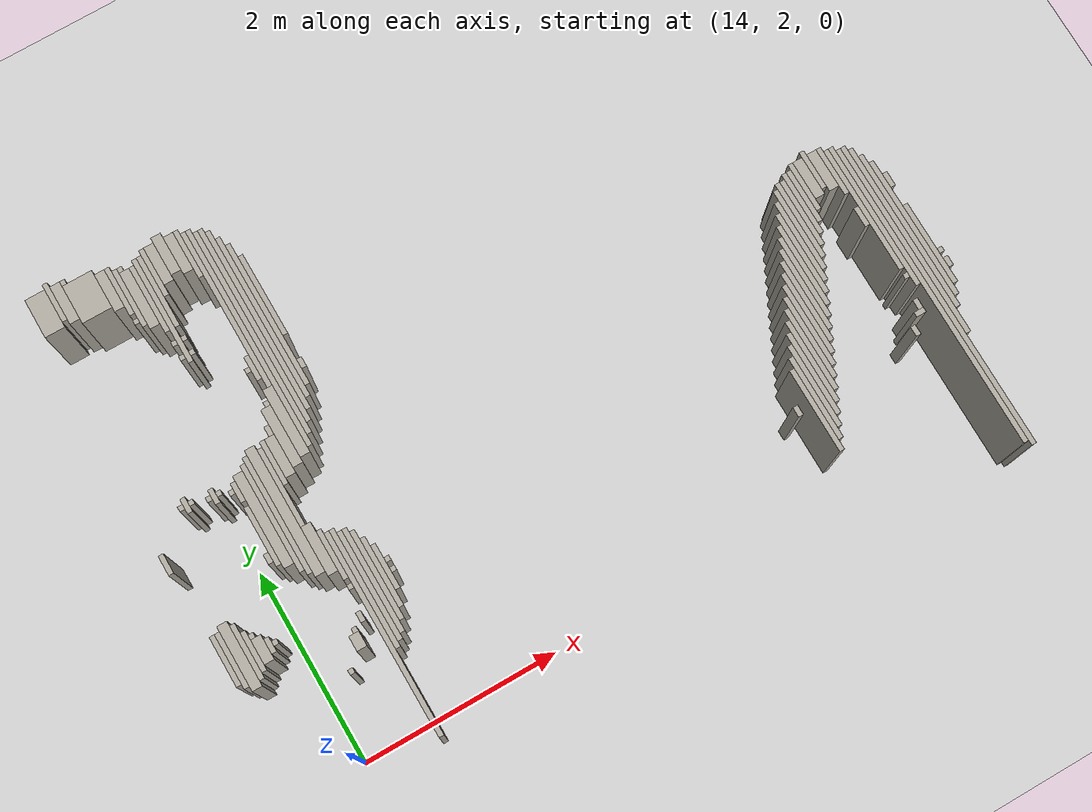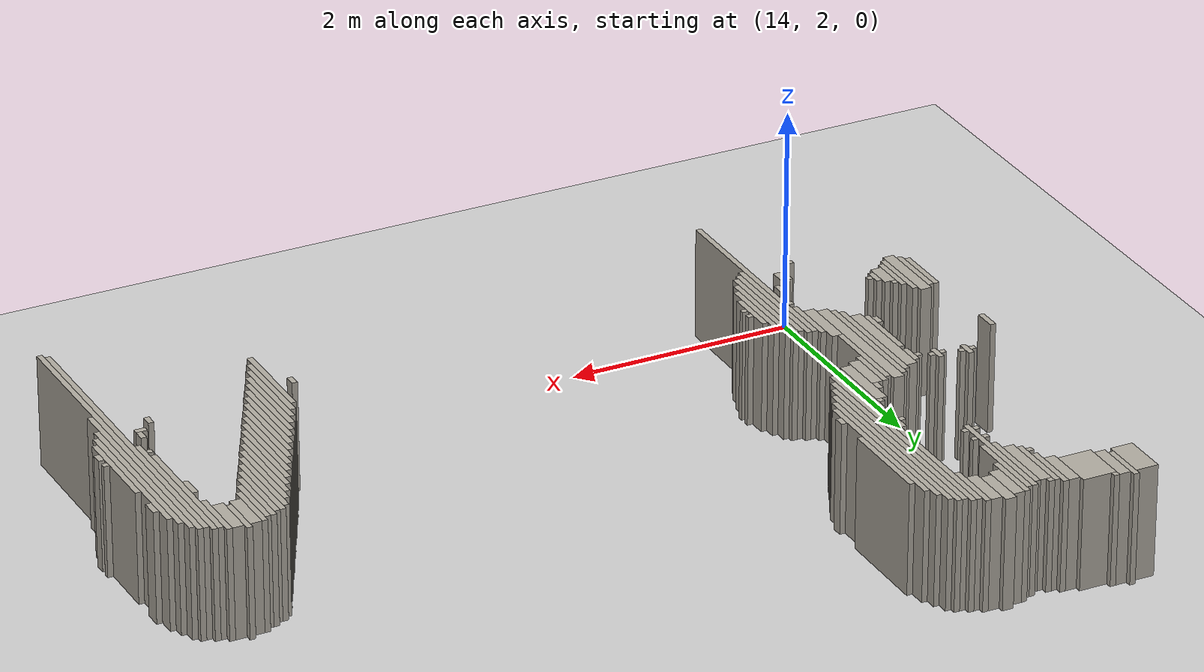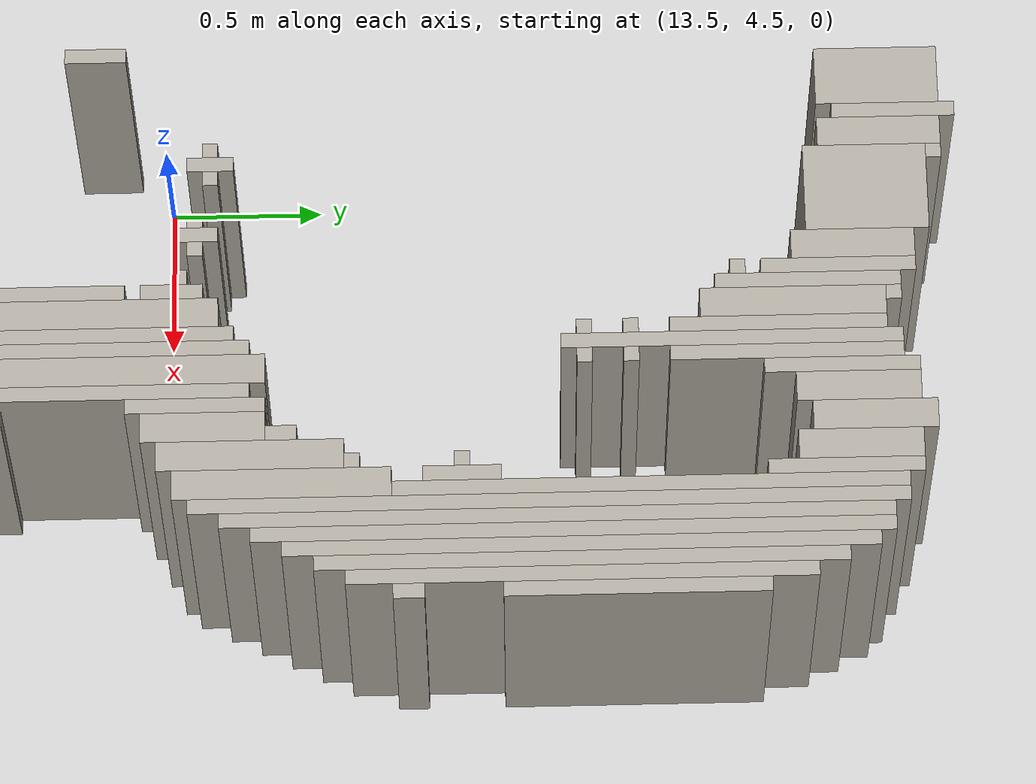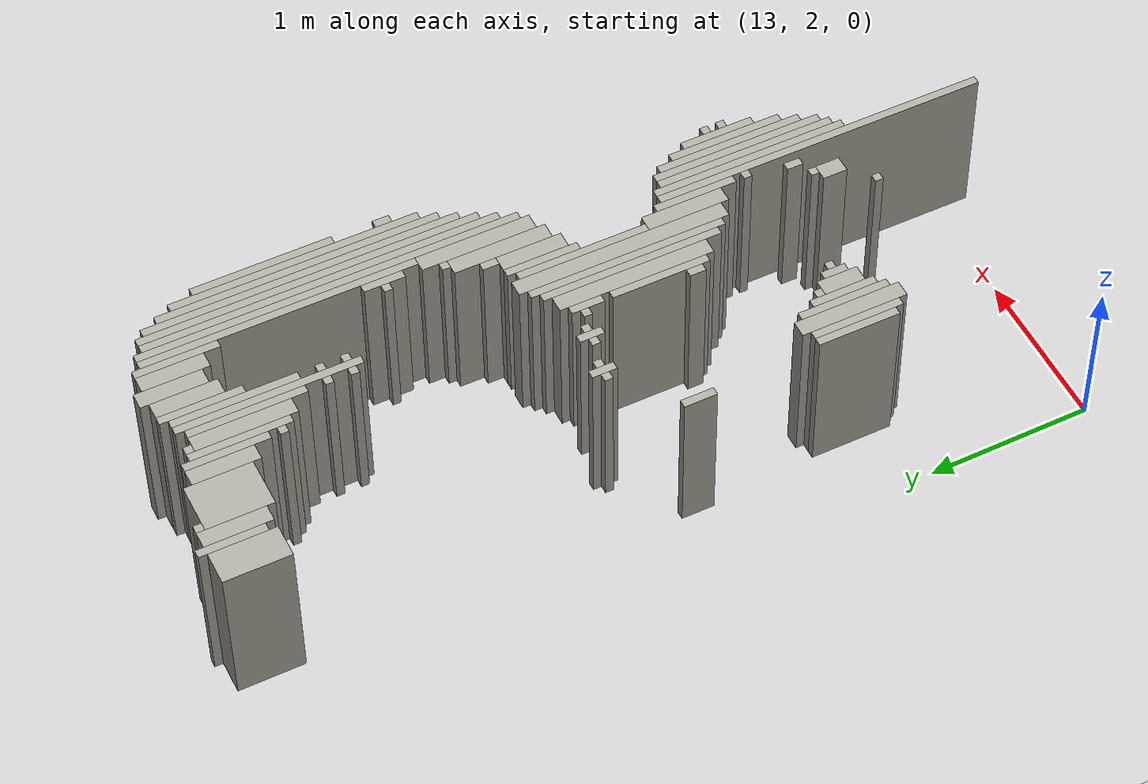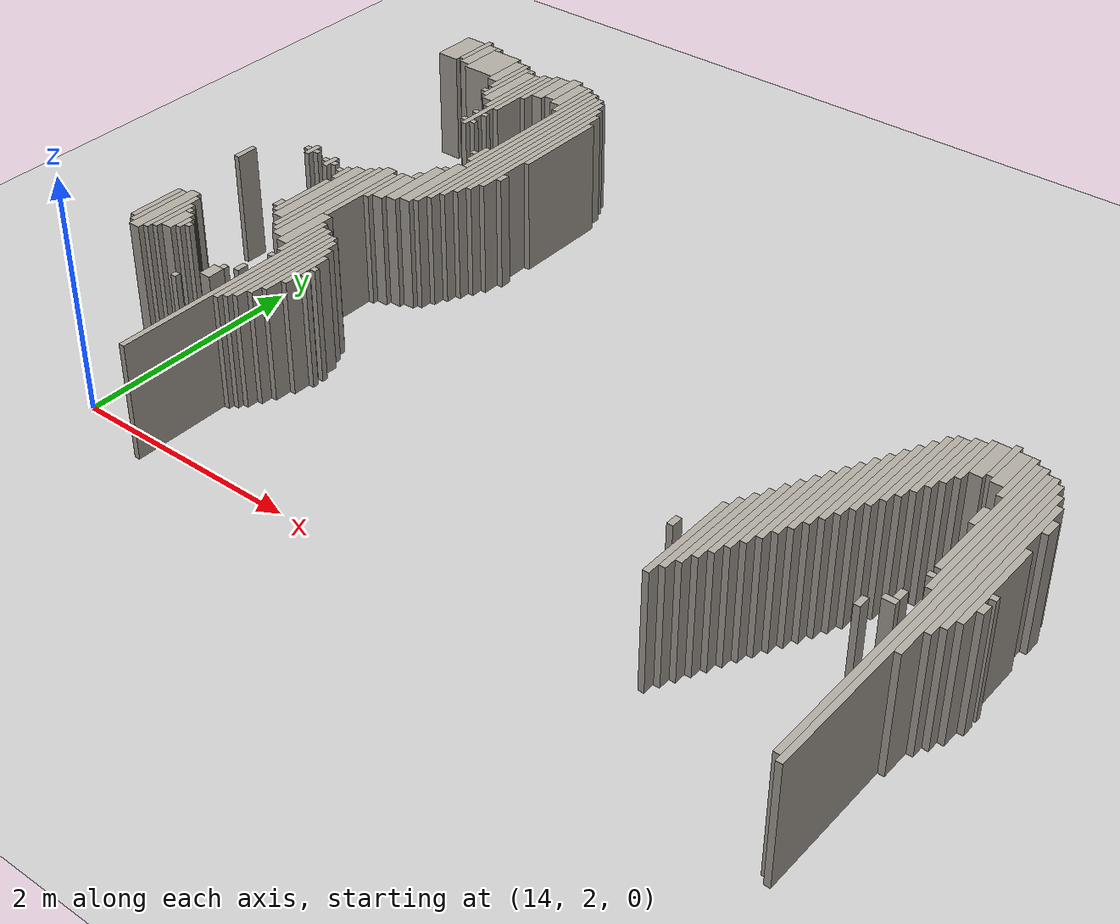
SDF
<sdf version="1.6">
 <world name="fr079_office">
  <include><uri>model://sun</uri></include>
  <include><uri>model://ground_plane</uri></include>
  <model name="fr079_office_walls">
   <static>true</static>
   <link name="w2005">
    <pose>20.527 2.994 0.500 0 0 0</pose>
    <collision name="c"><geometry><box><size>0.050 3.200 1.000</size></box></geometry></collision>
    <visual name="v">
     <geometry><box><size>0.050 3.200 1.000</size></box></geometry>
     <material><ambient>0.68 0.66 0.62 1</ambient><diffuse>0.68 0.66 0.62 1</diffuse></material>
    </visual>
   </link>
   <link name="w2022">
    <pose>20.477 3.019 0.500 0 0 0</pose>
    <collision name="c"><geometry><box><size>0.050 3.150 1.000</size></box></geometry></collision>
    <visual name="v">
     <geometry><box><size>0.050 3.150 1.000</size></box></geometry>
     <material><ambient>0.68 0.66 0.62 1</ambient><diffuse>0.68 0.66 0.62 1</diffuse></material>
    </visual>
   </link>
   <link name="w2121">
    <pose>14.727 2.819 0.500 0 0 0</pose>
    <collision name="c"><geometry><box><size>0.050 2.050 1.000</size></box></geometry></collision>
    <visual name="v">
     <geometry><box><size>0.050 2.050 1.000</size></box></geometry>
     <material><ambient>0.68 0.66 0.62 1</ambient><diffuse>0.68 0.66 0.62 1</diffuse></material>
    </visual>
   </link>
   <link name="w2218">
    <pose>19.027 2.619 0.500 0 0 0</pose>
    <collision name="c"><geometry><box><size>0.050 0.850 1.000</size></box></geometry></collision>
    <visual name="v">
     <geometry><box><size>0.050 0.850 1.000</size></box></geometry>
     <material><ambient>0.68 0.66 0.62 1</ambient><diffuse>0.68 0.66 0.62 1</diffuse></material>
    </visual>
   </link>
   <link name="w2239">
    <pose>19.077 2.719 0.500 0 0 0</pose>
    <collision name="c"><geometry><box><size>0.050 0.850 1.000</size></box></geometry></collision>
    <visual name="v">
     <geometry><box><size>0.050 0.850 1.000</size></box></geometry>
     <material><ambient>0.68 0.66 0.62 1</ambient><diffuse>0.68 0.66 0.62 1</diffuse></material>
    </visual>
   </link>
   <link name="w2260">
    <pose>19.127 2.819 0.500 0 0 0</pose>
    <collision name="c"><geometry><box><size>0.050 0.850 1.000</size></box></geometry></collision>
    <visual name="v">
     <geometry><box><size>0.050 0.850 1.000</size></box></geometry>
     <material><ambient>0.68 0.66 0.62 1</ambient><diffuse>0.68 0.66 0.62 1</diffuse></material>
    </visual>
   </link>
   <link name="w2283">
    <pose>19.177 2.919 0.500 0 0 0</pose>
    <collision name="c"><geometry><box><size>0.050 0.850 1.000</size></box></geometry></collision>
    <visual name="v">
     <geometry><box><size>0.050 0.850 1.000</size></box></geometry>
     <material><ambient>0.68 0.66 0.62 1</ambient><diffuse>0.68 0.66 0.62 1</diffuse></material>
    </visual>
   </link>
   <link name="w2305">
    <pose>20.577 3.544 0.500 0 0 0</pose>
    <collision name="c"><geometry><box><size>0.050 2.000 1.000</size></box></geometry></collision>
    <visual name="v">
     <geometry><box><size>0.050 2.000 1.000</size></box></geometry>
     <material><ambient>0.68 0.66 0.62 1</ambient><diffuse>0.68 0.66 0.62 1</diffuse></material>
    </visual>
   </link>
   <link name="w2321">
    <pose>19.227 3.019 0.500 0 0 0</pose>
    <collision name="c"><geometry><box><size>0.050 0.850 1.000</size></box></geometry></collision>
    <visual name="v">
     <geometry><box><size>0.050 0.850 1.000</size></box></geometry>
     <material><ambient>0.68 0.66 0.62 1</ambient><diffuse>0.68 0.66 0.62 1</diffuse></material>
    </visual>
   </link>
   <link name="w2329">
    <pose>14.327 2.669 0.500 0 0 0</pose>
    <collision name="c"><geometry><box><size>0.050 0.050 1.000</size></box></geometry></collision>
    <visual name="v">
     <geometry><box><size>0.050 0.050 1.000</size></box></geometry>
     <material><ambient>0.68 0.66 0.62 1</ambient><diffuse>0.68 0.66 0.62 1</diffuse></material>
    </visual>
   </link>
   <link name="w2330">
    <pose>14.777 3.244 0.500 0 0 0</pose>
    <collision name="c"><geometry><box><size>0.050 1.200 1.000</size></box></geometry></collision>
    <visual name="v">
     <geometry><box><size>0.050 1.200 1.000</size></box></geometry>
     <material><ambient>0.68 0.66 0.62 1</ambient><diffuse>0.68 0.66 0.62 1</diffuse></material>
    </visual>
   </link>
   <link name="w2331">
    <pose>18.877 2.694 0.500 0 0 0</pose>
    <collision name="c"><geometry><box><size>0.050 0.100 1.000</size></box></geometry></collision>
    <visual name="v">
     <geometry><box><size>0.050 0.100 1.000</size></box></geometry>
     <material><ambient>0.68 0.66 0.62 1</ambient><diffuse>0.68 0.66 0.62 1</diffuse></material>
    </visual>
   </link>
   <link name="w2338">
    <pose>14.827 3.244 0.500 0 0 0</pose>
    <collision name="c"><geometry><box><size>0.050 1.100 1.000</size></box></geometry></collision>
    <visual name="v">
     <geometry><box><size>0.050 1.100 1.000</size></box></geometry>
     <material><ambient>0.68 0.66 0.62 1</ambient><diffuse>0.68 0.66 0.62 1</diffuse></material>
    </visual>
   </link>
   <link name="w2339">
    <pose>19.277 3.119 0.500 0 0 0</pose>
    <collision name="c"><geometry><box><size>0.050 0.850 1.000</size></box></geometry></collision>
    <visual name="v">
     <geometry><box><size>0.050 0.850 1.000</size></box></geometry>
     <material><ambient>0.68 0.66 0.62 1</ambient><diffuse>0.68 0.66 0.62 1</diffuse></material>
    </visual>
   </link>
   <link name="w2347">
    <pose>14.877 3.269 0.500 0 0 0</pose>
    <collision name="c"><geometry><box><size>0.050 1.050 1.000</size></box></geometry></collision>
    <visual name="v">
     <geometry><box><size>0.050 1.050 1.000</size></box></geometry>
     <material><ambient>0.68 0.66 0.62 1</ambient><diffuse>0.68 0.66 0.62 1</diffuse></material>
    </visual>
   </link>
   <link name="w2348">
    <pose>20.177 2.794 0.500 0 0 0</pose>
    <collision name="c"><geometry><box><size>0.050 0.100 1.000</size></box></geometry></collision>
    <visual name="v">
     <geometry><box><size>0.050 0.100 1.000</size></box></geometry>
     <material><ambient>0.68 0.66 0.62 1</ambient><diffuse>0.68 0.66 0.62 1</diffuse></material>
    </visual>
   </link>
   <link name="w2354">
    <pose>14.502 2.869 0.500 0 0 0</pose>
    <collision name="c"><geometry><box><size>0.100 0.150 1.000</size></box></geometry></collision>
    <visual name="v">
     <geometry><box><size>0.100 0.150 1.000</size></box></geometry>
     <material><ambient>0.68 0.66 0.62 1</ambient><diffuse>0.68 0.66 0.62 1</diffuse></material>
    </visual>
   </link>
   <link name="w2355">
    <pose>19.327 3.219 0.500 0 0 0</pose>
    <collision name="c"><geometry><box><size>0.050 0.850 1.000</size></box></geometry></collision>
    <visual name="v">
     <geometry><box><size>0.050 0.850 1.000</size></box></geometry>
     <material><ambient>0.68 0.66 0.62 1</ambient><diffuse>0.68 0.66 0.62 1</diffuse></material>
    </visual>
   </link>
   <link name="w2356">
    <pose>20.627 3.619 0.500 0 0 0</pose>
    <collision name="c"><geometry><box><size>0.050 1.650 1.000</size></box></geometry></collision>
    <visual name="v">
     <geometry><box><size>0.050 1.650 1.000</size></box></geometry>
     <material><ambient>0.68 0.66 0.62 1</ambient><diffuse>0.68 0.66 0.62 1</diffuse></material>
    </visual>
   </link>
   <link name="w2367">
    <pose>14.927 3.294 0.500 0 0 0</pose>
    <collision name="c"><geometry><box><size>0.050 0.900 1.000</size></box></geometry></collision>
    <visual name="v">
     <geometry><box><size>0.050 0.900 1.000</size></box></geometry>
     <material><ambient>0.68 0.66 0.62 1</ambient><diffuse>0.68 0.66 0.62 1</diffuse></material>
    </visual>
   </link>
   <link name="w2380">
    <pose>19.377 3.319 0.500 0 0 0</pose>
    <collision name="c"><geometry><box><size>0.050 0.850 1.000</size></box></geometry></collision>
    <visual name="v">
     <geometry><box><size>0.050 0.850 1.000</size></box></geometry>
     <material><ambient>0.68 0.66 0.62 1</ambient><diffuse>0.68 0.66 0.62 1</diffuse></material>
    </visual>
   </link>
   <link name="w2381">
    <pose>20.302 2.919 0.500 0 0 0</pose>
    <collision name="c"><geometry><box><size>0.100 0.050 1.000</size></box></geometry></collision>
    <visual name="v">
     <geometry><box><size>0.100 0.050 1.000</size></box></geometry>
     <material><ambient>0.68 0.66 0.62 1</ambient><diffuse>0.68 0.66 0.62 1</diffuse></material>
    </visual>
   </link>
   <link name="w2382">
    <pose>20.677 3.619 0.500 0 0 0</pose>
    <collision name="c"><geometry><box><size>0.050 1.450 1.000</size></box></geometry></collision>
    <visual name="v">
     <geometry><box><size>0.050 1.450 1.000</size></box></geometry>
     <material><ambient>0.68 0.66 0.62 1</ambient><diffuse>0.68 0.66 0.62 1</diffuse></material>
    </visual>
   </link>
   <link name="w2391">
    <pose>13.552 3.269 0.500 0 0 0</pose>
    <collision name="c"><geometry><box><size>0.100 0.650 1.000</size></box></geometry></collision>
    <visual name="v">
     <geometry><box><size>0.100 0.650 1.000</size></box></geometry>
     <material><ambient>0.68 0.66 0.62 1</ambient><diffuse>0.68 0.66 0.62 1</diffuse></material>
    </visual>
   </link>
   <link name="w2392">
    <pose>14.527 2.969 0.500 0 0 0</pose>
    <collision name="c"><geometry><box><size>0.050 0.050 1.000</size></box></geometry></collision>
    <visual name="v">
     <geometry><box><size>0.050 0.050 1.000</size></box></geometry>
     <material><ambient>0.68 0.66 0.62 1</ambient><diffuse>0.68 0.66 0.62 1</diffuse></material>
    </visual>
   </link>
   <link name="w2393">
    <pose>14.977 3.294 0.500 0 0 0</pose>
    <collision name="c"><geometry><box><size>0.050 0.700 1.000</size></box></geometry></collision>
    <visual name="v">
     <geometry><box><size>0.050 0.700 1.000</size></box></geometry>
     <material><ambient>0.68 0.66 0.62 1</ambient><diffuse>0.68 0.66 0.62 1</diffuse></material>
    </visual>
   </link>
   <link name="w2394">
    <pose>20.327 2.994 0.500 0 0 0</pose>
    <collision name="c"><geometry><box><size>0.050 0.100 1.000</size></box></geometry></collision>
    <visual name="v">
     <geometry><box><size>0.050 0.100 1.000</size></box></geometry>
     <material><ambient>0.68 0.66 0.62 1</ambient><diffuse>0.68 0.66 0.62 1</diffuse></material>
    </visual>
   </link>
   <link name="w2401">
    <pose>13.477 3.269 0.500 0 0 0</pose>
    <collision name="c"><geometry><box><size>0.050 0.550 1.000</size></box></geometry></collision>
    <visual name="v">
     <geometry><box><size>0.050 0.550 1.000</size></box></geometry>
     <material><ambient>0.68 0.66 0.62 1</ambient><diffuse>0.68 0.66 0.62 1</diffuse></material>
    </visual>
   </link>
   <link name="w2402">
    <pose>13.627 3.269 0.500 0 0 0</pose>
    <collision name="c"><geometry><box><size>0.050 0.550 1.000</size></box></geometry></collision>
    <visual name="v">
     <geometry><box><size>0.050 0.550 1.000</size></box></geometry>
     <material><ambient>0.68 0.66 0.62 1</ambient><diffuse>0.68 0.66 0.62 1</diffuse></material>
    </visual>
   </link>
   <link name="w2403">
    <pose>14.627 3.044 0.500 0 0 0</pose>
    <collision name="c"><geometry><box><size>0.050 0.100 1.000</size></box></geometry></collision>
    <visual name="v">
     <geometry><box><size>0.050 0.100 1.000</size></box></geometry>
     <material><ambient>0.68 0.66 0.62 1</ambient><diffuse>0.68 0.66 0.62 1</diffuse></material>
    </visual>
   </link>
   <link name="w2404">
    <pose>19.427 3.419 0.500 0 0 0</pose>
    <collision name="c"><geometry><box><size>0.050 0.850 1.000</size></box></geometry></collision>
    <visual name="v">
     <geometry><box><size>0.050 0.850 1.000</size></box></geometry>
     <material><ambient>0.68 0.66 0.62 1</ambient><diffuse>0.68 0.66 0.62 1</diffuse></material>
    </visual>
   </link>
   <link name="w2405">
    <pose>20.727 3.419 0.500 0 0 0</pose>
    <collision name="c"><geometry><box><size>0.050 0.850 1.000</size></box></geometry></collision>
    <visual name="v">
     <geometry><box><size>0.050 0.850 1.000</size></box></geometry>
     <material><ambient>0.68 0.66 0.62 1</ambient><diffuse>0.68 0.66 0.62 1</diffuse></material>
    </visual>
   </link>
   <link name="w2417">
    <pose>13.427 3.294 0.500 0 0 0</pose>
    <collision name="c"><geometry><box><size>0.050 0.500 1.000</size></box></geometry></collision>
    <visual name="v">
     <geometry><box><size>0.050 0.500 1.000</size></box></geometry>
     <material><ambient>0.68 0.66 0.62 1</ambient><diffuse>0.68 0.66 0.62 1</diffuse></material>
    </visual>
   </link>
   <link name="w2418">
    <pose>13.677 3.244 0.500 0 0 0</pose>
    <collision name="c"><geometry><box><size>0.050 0.400 1.000</size></box></geometry></collision>
    <visual name="v">
     <geometry><box><size>0.050 0.400 1.000</size></box></geometry>
     <material><ambient>0.68 0.66 0.62 1</ambient><diffuse>0.68 0.66 0.62 1</diffuse></material>
    </visual>
   </link>
   <link name="w2437">
    <pose>13.752 3.219 0.500 0 0 0</pose>
    <collision name="c"><geometry><box><size>0.100 0.250 1.000</size></box></geometry></collision>
    <visual name="v">
     <geometry><box><size>0.100 0.250 1.000</size></box></geometry>
     <material><ambient>0.68 0.66 0.62 1</ambient><diffuse>0.68 0.66 0.62 1</diffuse></material>
    </visual>
   </link>
   <link name="w2438">
    <pose>15.027 3.319 0.500 0 0 0</pose>
    <collision name="c"><geometry><box><size>0.050 0.450 1.000</size></box></geometry></collision>
    <visual name="v">
     <geometry><box><size>0.050 0.450 1.000</size></box></geometry>
     <material><ambient>0.68 0.66 0.62 1</ambient><diffuse>0.68 0.66 0.62 1</diffuse></material>
    </visual>
   </link>
   <link name="w2439">
    <pose>19.477 3.519 0.500 0 0 0</pose>
    <collision name="c"><geometry><box><size>0.050 0.850 1.000</size></box></geometry></collision>
    <visual name="v">
     <geometry><box><size>0.050 0.850 1.000</size></box></geometry>
     <material><ambient>0.68 0.66 0.62 1</ambient><diffuse>0.68 0.66 0.62 1</diffuse></material>
    </visual>
   </link>
   <link name="w2449">
    <pose>13.827 3.219 0.500 0 0 0</pose>
    <collision name="c"><geometry><box><size>0.050 0.150 1.000</size></box></geometry></collision>
    <visual name="v">
     <geometry><box><size>0.050 0.150 1.000</size></box></geometry>
     <material><ambient>0.68 0.66 0.62 1</ambient><diffuse>0.68 0.66 0.62 1</diffuse></material>
    </visual>
   </link>
   <link name="w2450">
    <pose>20.427 3.894 0.500 0 0 0</pose>
    <collision name="c"><geometry><box><size>0.050 1.500 1.000</size></box></geometry></collision>
    <visual name="v">
     <geometry><box><size>0.050 1.500 1.000</size></box></geometry>
     <material><ambient>0.68 0.66 0.62 1</ambient><diffuse>0.68 0.66 0.62 1</diffuse></material>
    </visual>
   </link>
   <link name="w2451">
    <pose>20.777 3.194 0.500 0 0 0</pose>
    <collision name="c"><geometry><box><size>0.050 0.100 1.000</size></box></geometry></collision>
    <visual name="v">
     <geometry><box><size>0.050 0.100 1.000</size></box></geometry>
     <material><ambient>0.68 0.66 0.62 1</ambient><diffuse>0.68 0.66 0.62 1</diffuse></material>
    </visual>
   </link>
   <link name="w2463">
    <pose>13.877 3.219 0.500 0 0 0</pose>
    <collision name="c"><geometry><box><size>0.050 0.050 1.000</size></box></geometry></collision>
    <visual name="v">
     <geometry><box><size>0.050 0.050 1.000</size></box></geometry>
     <material><ambient>0.68 0.66 0.62 1</ambient><diffuse>0.68 0.66 0.62 1</diffuse></material>
    </visual>
   </link>
   <link name="w2464">
    <pose>19.527 3.619 0.500 0 0 0</pose>
    <collision name="c"><geometry><box><size>0.050 0.850 1.000</size></box></geometry></collision>
    <visual name="v">
     <geometry><box><size>0.050 0.850 1.000</size></box></geometry>
     <material><ambient>0.68 0.66 0.62 1</ambient><diffuse>0.68 0.66 0.62 1</diffuse></material>
    </visual>
   </link>
   <link name="w2477">
    <pose>15.077 3.269 0.500 0 0 0</pose>
    <collision name="c"><geometry><box><size>0.050 0.050 1.000</size></box></geometry></collision>
    <visual name="v">
     <geometry><box><size>0.050 0.050 1.000</size></box></geometry>
     <material><ambient>0.68 0.66 0.62 1</ambient><diffuse>0.68 0.66 0.62 1</diffuse></material>
    </visual>
   </link>
   <link name="w2478">
    <pose>20.377 3.269 0.500 0 0 0</pose>
    <collision name="c"><geometry><box><size>0.050 0.050 1.000</size></box></geometry></collision>
    <visual name="v">
     <geometry><box><size>0.050 0.050 1.000</size></box></geometry>
     <material><ambient>0.68 0.66 0.62 1</ambient><diffuse>0.68 0.66 0.62 1</diffuse></material>
    </visual>
   </link>
   <link name="w2489">
    <pose>14.677 3.319 0.500 0 0 0</pose>
    <collision name="c"><geometry><box><size>0.050 0.050 1.000</size></box></geometry></collision>
    <visual name="v">
     <geometry><box><size>0.050 0.050 1.000</size></box></geometry>
     <material><ambient>0.68 0.66 0.62 1</ambient><diffuse>0.68 0.66 0.62 1</diffuse></material>
    </visual>
   </link>
   <link name="w2490">
    <pose>19.577 3.719 0.500 0 0 0</pose>
    <collision name="c"><geometry><box><size>0.050 0.850 1.000</size></box></geometry></collision>
    <visual name="v">
     <geometry><box><size>0.050 0.850 1.000</size></box></geometry>
     <material><ambient>0.68 0.66 0.62 1</ambient><diffuse>0.68 0.66 0.62 1</diffuse></material>
    </visual>
   </link>
   <link name="w2491">
    <pose>20.777 3.319 0.500 0 0 0</pose>
    <collision name="c"><geometry><box><size>0.050 0.050 1.000</size></box></geometry></collision>
    <visual name="v">
     <geometry><box><size>0.050 0.050 1.000</size></box></geometry>
     <material><ambient>0.68 0.66 0.62 1</ambient><diffuse>0.68 0.66 0.62 1</diffuse></material>
    </visual>
   </link>
   <link name="w2502">
    <pose>13.727 3.369 0.500 0 0 0</pose>
    <collision name="c"><geometry><box><size>0.050 0.050 1.000</size></box></geometry></collision>
    <visual name="v">
     <geometry><box><size>0.050 0.050 1.000</size></box></geometry>
     <material><ambient>0.68 0.66 0.62 1</ambient><diffuse>0.68 0.66 0.62 1</diffuse></material>
    </visual>
   </link>
   <link name="w2503">
    <pose>15.077 3.369 0.500 0 0 0</pose>
    <collision name="c"><geometry><box><size>0.050 0.050 1.000</size></box></geometry></collision>
    <visual name="v">
     <geometry><box><size>0.050 0.050 1.000</size></box></geometry>
     <material><ambient>0.68 0.66 0.62 1</ambient><diffuse>0.68 0.66 0.62 1</diffuse></material>
    </visual>
   </link>
   <link name="w2504">
    <pose>20.377 3.994 0.500 0 0 0</pose>
    <collision name="c"><geometry><box><size>0.050 1.300 1.000</size></box></geometry></collision>
    <visual name="v">
     <geometry><box><size>0.050 1.300 1.000</size></box></geometry>
     <material><ambient>0.68 0.66 0.62 1</ambient><diffuse>0.68 0.66 0.62 1</diffuse></material>
    </visual>
   </link>
   <link name="w2515">
    <pose>14.677 3.644 0.500 0 0 0</pose>
    <collision name="c"><geometry><box><size>0.050 0.500 1.000</size></box></geometry></collision>
    <visual name="v">
     <geometry><box><size>0.050 0.500 1.000</size></box></geometry>
     <material><ambient>0.68 0.66 0.62 1</ambient><diffuse>0.68 0.66 0.62 1</diffuse></material>
    </visual>
   </link>
   <link name="w2516">
    <pose>19.627 3.819 0.500 0 0 0</pose>
    <collision name="c"><geometry><box><size>0.050 0.850 1.000</size></box></geometry></collision>
    <visual name="v">
     <geometry><box><size>0.050 0.850 1.000</size></box></geometry>
     <material><ambient>0.68 0.66 0.62 1</ambient><diffuse>0.68 0.66 0.62 1</diffuse></material>
    </visual>
   </link>
   <link name="w2533">
    <pose>14.602 3.744 0.500 0 0 0</pose>
    <collision name="c"><geometry><box><size>0.100 0.500 1.000</size></box></geometry></collision>
    <visual name="v">
     <geometry><box><size>0.100 0.500 1.000</size></box></geometry>
     <material><ambient>0.68 0.66 0.62 1</ambient><diffuse>0.68 0.66 0.62 1</diffuse></material>
    </visual>
   </link>
   <link name="w2534">
    <pose>19.677 3.919 0.500 0 0 0</pose>
    <collision name="c"><geometry><box><size>0.050 0.850 1.000</size></box></geometry></collision>
    <visual name="v">
     <geometry><box><size>0.050 0.850 1.000</size></box></geometry>
     <material><ambient>0.68 0.66 0.62 1</ambient><diffuse>0.68 0.66 0.62 1</diffuse></material>
    </visual>
   </link>
   <link name="w2541">
    <pose>14.502 4.194 0.500 0 0 0</pose>
    <collision name="c"><geometry><box><size>0.100 1.300 1.000</size></box></geometry></collision>
    <visual name="v">
     <geometry><box><size>0.100 1.300 1.000</size></box></geometry>
     <material><ambient>0.68 0.66 0.62 1</ambient><diffuse>0.68 0.66 0.62 1</diffuse></material>
    </visual>
   </link>
   <link name="w2547">
    <pose>14.427 4.194 0.500 0 0 0</pose>
    <collision name="c"><geometry><box><size>0.050 1.200 1.000</size></box></geometry></collision>
    <visual name="v">
     <geometry><box><size>0.050 1.200 1.000</size></box></geometry>
     <material><ambient>0.68 0.66 0.62 1</ambient><diffuse>0.68 0.66 0.62 1</diffuse></material>
    </visual>
   </link>
   <link name="w2548">
    <pose>19.727 4.019 0.500 0 0 0</pose>
    <collision name="c"><geometry><box><size>0.050 0.850 1.000</size></box></geometry></collision>
    <visual name="v">
     <geometry><box><size>0.050 0.850 1.000</size></box></geometry>
     <material><ambient>0.68 0.66 0.62 1</ambient><diffuse>0.68 0.66 0.62 1</diffuse></material>
    </visual>
   </link>
   <link name="w2556">
    <pose>14.377 4.194 0.500 0 0 0</pose>
    <collision name="c"><geometry><box><size>0.050 1.100 1.000</size></box></geometry></collision>
    <visual name="v">
     <geometry><box><size>0.050 1.100 1.000</size></box></geometry>
     <material><ambient>0.68 0.66 0.62 1</ambient><diffuse>0.68 0.66 0.62 1</diffuse></material>
    </visual>
   </link>
   <link name="w2563">
    <pose>19.777 4.119 0.500 0 0 0</pose>
    <collision name="c"><geometry><box><size>0.050 0.850 1.000</size></box></geometry></collision>
    <visual name="v">
     <geometry><box><size>0.050 0.850 1.000</size></box></geometry>
     <material><ambient>0.68 0.66 0.62 1</ambient><diffuse>0.68 0.66 0.62 1</diffuse></material>
    </visual>
   </link>
   <link name="w2572">
    <pose>14.302 4.219 0.500 0 0 0</pose>
    <collision name="c"><geometry><box><size>0.100 0.950 1.000</size></box></geometry></collision>
    <visual name="v">
     <geometry><box><size>0.100 0.950 1.000</size></box></geometry>
     <material><ambient>0.68 0.66 0.62 1</ambient><diffuse>0.68 0.66 0.62 1</diffuse></material>
    </visual>
   </link>
   <link name="w2581">
    <pose>14.227 4.094 0.500 0 0 0</pose>
    <collision name="c"><geometry><box><size>0.050 0.600 1.000</size></box></geometry></collision>
    <visual name="v">
     <geometry><box><size>0.050 0.600 1.000</size></box></geometry>
     <material><ambient>0.68 0.66 0.62 1</ambient><diffuse>0.68 0.66 0.62 1</diffuse></material>
    </visual>
   </link>
   <link name="w2582">
    <pose>19.827 4.194 0.500 0 0 0</pose>
    <collision name="c"><geometry><box><size>0.050 0.800 1.000</size></box></geometry></collision>
    <visual name="v">
     <geometry><box><size>0.050 0.800 1.000</size></box></geometry>
     <material><ambient>0.68 0.66 0.62 1</ambient><diffuse>0.68 0.66 0.62 1</diffuse></material>
    </visual>
   </link>
   <link name="w2588">
    <pose>14.177 3.894 0.500 0 0 0</pose>
    <collision name="c"><geometry><box><size>0.050 0.100 1.000</size></box></geometry></collision>
    <visual name="v">
     <geometry><box><size>0.050 0.100 1.000</size></box></geometry>
     <material><ambient>0.68 0.66 0.62 1</ambient><diffuse>0.68 0.66 0.62 1</diffuse></material>
    </visual>
   </link>
   <link name="w2589">
    <pose>20.327 3.944 0.500 0 0 0</pose>
    <collision name="c"><geometry><box><size>0.050 0.200 1.000</size></box></geometry></collision>
    <visual name="v">
     <geometry><box><size>0.050 0.200 1.000</size></box></geometry>
     <material><ambient>0.68 0.66 0.62 1</ambient><diffuse>0.68 0.66 0.62 1</diffuse></material>
    </visual>
   </link>
   <link name="w2597">
    <pose>19.877 4.244 0.500 0 0 0</pose>
    <collision name="c"><geometry><box><size>0.050 0.700 1.000</size></box></geometry></collision>
    <visual name="v">
     <geometry><box><size>0.050 0.700 1.000</size></box></geometry>
     <material><ambient>0.68 0.66 0.62 1</ambient><diffuse>0.68 0.66 0.62 1</diffuse></material>
    </visual>
   </link>
   <link name="w2618">
    <pose>14.577 4.394 0.500 0 0 0</pose>
    <collision name="c"><geometry><box><size>0.050 0.800 1.000</size></box></geometry></collision>
    <visual name="v">
     <geometry><box><size>0.050 0.800 1.000</size></box></geometry>
     <material><ambient>0.68 0.66 0.62 1</ambient><diffuse>0.68 0.66 0.62 1</diffuse></material>
    </visual>
   </link>
   <link name="w2619">
    <pose>19.927 4.319 0.500 0 0 0</pose>
    <collision name="c"><geometry><box><size>0.050 0.650 1.000</size></box></geometry></collision>
    <visual name="v">
     <geometry><box><size>0.050 0.650 1.000</size></box></geometry>
     <material><ambient>0.68 0.66 0.62 1</ambient><diffuse>0.68 0.66 0.62 1</diffuse></material>
    </visual>
   </link>
   <link name="w2630">
    <pose>20.727 4.119 0.500 0 0 0</pose>
    <collision name="c"><geometry><box><size>0.050 0.150 1.000</size></box></geometry></collision>
    <visual name="v">
     <geometry><box><size>0.050 0.150 1.000</size></box></geometry>
     <material><ambient>0.68 0.66 0.62 1</ambient><diffuse>0.68 0.66 0.62 1</diffuse></material>
    </visual>
   </link>
   <link name="w2646">
    <pose>19.977 4.369 0.500 0 0 0</pose>
    <collision name="c"><geometry><box><size>0.050 0.550 1.000</size></box></geometry></collision>
    <visual name="v">
     <geometry><box><size>0.050 0.550 1.000</size></box></geometry>
     <material><ambient>0.68 0.66 0.62 1</ambient><diffuse>0.68 0.66 0.62 1</diffuse></material>
    </visual>
   </link>
   <link name="w2671">
    <pose>13.377 4.294 0.500 0 0 0</pose>
    <collision name="c"><geometry><box><size>0.050 0.200 1.000</size></box></geometry></collision>
    <visual name="v">
     <geometry><box><size>0.050 0.200 1.000</size></box></geometry>
     <material><ambient>0.68 0.66 0.62 1</ambient><diffuse>0.68 0.66 0.62 1</diffuse></material>
    </visual>
   </link>
   <link name="w2672">
    <pose>20.027 4.444 0.500 0 0 0</pose>
    <collision name="c"><geometry><box><size>0.050 0.500 1.000</size></box></geometry></collision>
    <visual name="v">
     <geometry><box><size>0.050 0.500 1.000</size></box></geometry>
     <material><ambient>0.68 0.66 0.62 1</ambient><diffuse>0.68 0.66 0.62 1</diffuse></material>
    </visual>
   </link>
   <link name="w2673">
    <pose>20.327 4.444 0.500 0 0 0</pose>
    <collision name="c"><geometry><box><size>0.050 0.500 1.000</size></box></geometry></collision>
    <visual name="v">
     <geometry><box><size>0.050 0.500 1.000</size></box></geometry>
     <material><ambient>0.68 0.66 0.62 1</ambient><diffuse>0.68 0.66 0.62 1</diffuse></material>
    </visual>
   </link>
   <link name="w2687">
    <pose>20.102 4.494 0.500 0 0 0</pose>
    <collision name="c"><geometry><box><size>0.100 0.400 1.000</size></box></geometry></collision>
    <visual name="v">
     <geometry><box><size>0.100 0.400 1.000</size></box></geometry>
     <material><ambient>0.68 0.66 0.62 1</ambient><diffuse>0.68 0.66 0.62 1</diffuse></material>
    </visual>
   </link>
   <link name="w2688">
    <pose>20.252 4.494 0.500 0 0 0</pose>
    <collision name="c"><geometry><box><size>0.100 0.400 1.000</size></box></geometry></collision>
    <visual name="v">
     <geometry><box><size>0.100 0.400 1.000</size></box></geometry>
     <material><ambient>0.68 0.66 0.62 1</ambient><diffuse>0.68 0.66 0.62 1</diffuse></material>
    </visual>
   </link>
   <link name="w2694">
    <pose>20.177 4.544 0.500 0 0 0</pose>
    <collision name="c"><geometry><box><size>0.050 0.400 1.000</size></box></geometry></collision>
    <visual name="v">
     <geometry><box><size>0.050 0.400 1.000</size></box></geometry>
     <material><ambient>0.68 0.66 0.62 1</ambient><diffuse>0.68 0.66 0.62 1</diffuse></material>
    </visual>
   </link>
   <link name="w2702">
    <pose>14.627 4.619 0.500 0 0 0</pose>
    <collision name="c"><geometry><box><size>0.050 0.450 1.000</size></box></geometry></collision>
    <visual name="v">
     <geometry><box><size>0.050 0.450 1.000</size></box></geometry>
     <material><ambient>0.68 0.66 0.62 1</ambient><diffuse>0.68 0.66 0.62 1</diffuse></material>
    </visual>
   </link>
   <link name="w2707">
    <pose>14.227 4.544 0.500 0 0 0</pose>
    <collision name="c"><geometry><box><size>0.050 0.200 1.000</size></box></geometry></collision>
    <visual name="v">
     <geometry><box><size>0.050 0.200 1.000</size></box></geometry>
     <material><ambient>0.68 0.66 0.62 1</ambient><diffuse>0.68 0.66 0.62 1</diffuse></material>
    </visual>
   </link>
   <link name="w2708">
    <pose>14.702 4.644 0.500 0 0 0</pose>
    <collision name="c"><geometry><box><size>0.100 0.400 1.000</size></box></geometry></collision>
    <visual name="v">
     <geometry><box><size>0.100 0.400 1.000</size></box></geometry>
     <material><ambient>0.68 0.66 0.62 1</ambient><diffuse>0.68 0.66 0.62 1</diffuse></material>
    </visual>
   </link>
   <link name="w2714">
    <pose>14.802 4.794 0.500 0 0 0</pose>
    <collision name="c"><geometry><box><size>0.100 0.600 1.000</size></box></geometry></collision>
    <visual name="v">
     <geometry><box><size>0.100 0.600 1.000</size></box></geometry>
     <material><ambient>0.68 0.66 0.62 1</ambient><diffuse>0.68 0.66 0.62 1</diffuse></material>
    </visual>
   </link>
   <link name="w2720">
    <pose>14.027 4.619 0.500 0 0 0</pose>
    <collision name="c"><geometry><box><size>0.050 0.150 1.000</size></box></geometry></collision>
    <visual name="v">
     <geometry><box><size>0.050 0.150 1.000</size></box></geometry>
     <material><ambient>0.68 0.66 0.62 1</ambient><diffuse>0.68 0.66 0.62 1</diffuse></material>
    </visual>
   </link>
   <link name="w2721">
    <pose>14.177 4.569 0.500 0 0 0</pose>
    <collision name="c"><geometry><box><size>0.050 0.050 1.000</size></box></geometry></collision>
    <visual name="v">
     <geometry><box><size>0.050 0.050 1.000</size></box></geometry>
     <material><ambient>0.68 0.66 0.62 1</ambient><diffuse>0.68 0.66 0.62 1</diffuse></material>
    </visual>
   </link>
   <link name="w2722">
    <pose>14.902 4.894 0.500 0 0 0</pose>
    <collision name="c"><geometry><box><size>0.100 0.700 1.000</size></box></geometry></collision>
    <visual name="v">
     <geometry><box><size>0.100 0.700 1.000</size></box></geometry>
     <material><ambient>0.68 0.66 0.62 1</ambient><diffuse>0.68 0.66 0.62 1</diffuse></material>
    </visual>
   </link>
   <link name="w2732">
    <pose>13.777 4.669 0.500 0 0 0</pose>
    <collision name="c"><geometry><box><size>0.050 0.150 1.000</size></box></geometry></collision>
    <visual name="v">
     <geometry><box><size>0.050 0.150 1.000</size></box></geometry>
     <material><ambient>0.68 0.66 0.62 1</ambient><diffuse>0.68 0.66 0.62 1</diffuse></material>
    </visual>
   </link>
   <link name="w2733">
    <pose>13.977 4.619 0.500 0 0 0</pose>
    <collision name="c"><geometry><box><size>0.050 0.050 1.000</size></box></geometry></collision>
    <visual name="v">
     <geometry><box><size>0.050 0.050 1.000</size></box></geometry>
     <material><ambient>0.68 0.66 0.62 1</ambient><diffuse>0.68 0.66 0.62 1</diffuse></material>
    </visual>
   </link>
   <link name="w2734">
    <pose>14.077 4.619 0.500 0 0 0</pose>
    <collision name="c"><geometry><box><size>0.050 0.050 1.000</size></box></geometry></collision>
    <visual name="v">
     <geometry><box><size>0.050 0.050 1.000</size></box></geometry>
     <material><ambient>0.68 0.66 0.62 1</ambient><diffuse>0.68 0.66 0.62 1</diffuse></material>
    </visual>
   </link>
   <link name="w2735">
    <pose>14.977 5.744 0.500 0 0 0</pose>
    <collision name="c"><geometry><box><size>0.050 2.300 1.000</size></box></geometry></collision>
    <visual name="v">
     <geometry><box><size>0.050 2.300 1.000</size></box></geometry>
     <material><ambient>0.68 0.66 0.62 1</ambient><diffuse>0.68 0.66 0.62 1</diffuse></material>
    </visual>
   </link>
   <link name="w2743">
    <pose>13.727 4.669 0.500 0 0 0</pose>
    <collision name="c"><geometry><box><size>0.050 0.050 1.000</size></box></geometry></collision>
    <visual name="v">
     <geometry><box><size>0.050 0.050 1.000</size></box></geometry>
     <material><ambient>0.68 0.66 0.62 1</ambient><diffuse>0.68 0.66 0.62 1</diffuse></material>
    </visual>
   </link>
   <link name="w2744">
    <pose>13.827 4.669 0.500 0 0 0</pose>
    <collision name="c"><geometry><box><size>0.050 0.050 1.000</size></box></geometry></collision>
    <visual name="v">
     <geometry><box><size>0.050 0.050 1.000</size></box></geometry>
     <material><ambient>0.68 0.66 0.62 1</ambient><diffuse>0.68 0.66 0.62 1</diffuse></material>
    </visual>
   </link>
   <link name="w2751">
    <pose>15.027 5.769 0.500 0 0 0</pose>
    <collision name="c"><geometry><box><size>0.050 2.150 1.000</size></box></geometry></collision>
    <visual name="v">
     <geometry><box><size>0.050 2.150 1.000</size></box></geometry>
     <material><ambient>0.68 0.66 0.62 1</ambient><diffuse>0.68 0.66 0.62 1</diffuse></material>
    </visual>
   </link>
   <link name="w2766">
    <pose>15.077 5.819 0.500 0 0 0</pose>
    <collision name="c"><geometry><box><size>0.050 2.050 1.000</size></box></geometry></collision>
    <visual name="v">
     <geometry><box><size>0.050 2.050 1.000</size></box></geometry>
     <material><ambient>0.68 0.66 0.62 1</ambient><diffuse>0.68 0.66 0.62 1</diffuse></material>
    </visual>
   </link>
   <link name="w2773">
    <pose>14.727 4.894 0.500 0 0 0</pose>
    <collision name="c"><geometry><box><size>0.050 0.100 1.000</size></box></geometry></collision>
    <visual name="v">
     <geometry><box><size>0.050 0.100 1.000</size></box></geometry>
     <material><ambient>0.68 0.66 0.62 1</ambient><diffuse>0.68 0.66 0.62 1</diffuse></material>
    </visual>
   </link>
   <link name="w2785">
    <pose>15.127 5.844 0.500 0 0 0</pose>
    <collision name="c"><geometry><box><size>0.050 1.900 1.000</size></box></geometry></collision>
    <visual name="v">
     <geometry><box><size>0.050 1.900 1.000</size></box></geometry>
     <material><ambient>0.68 0.66 0.62 1</ambient><diffuse>0.68 0.66 0.62 1</diffuse></material>
    </visual>
   </link>
   <link name="w2815">
    <pose>15.177 5.844 0.500 0 0 0</pose>
    <collision name="c"><geometry><box><size>0.050 1.700 1.000</size></box></geometry></collision>
    <visual name="v">
     <geometry><box><size>0.050 1.700 1.000</size></box></geometry>
     <material><ambient>0.68 0.66 0.62 1</ambient><diffuse>0.68 0.66 0.62 1</diffuse></material>
    </visual>
   </link>
   <link name="w2830">
    <pose>14.827 5.119 0.500 0 0 0</pose>
    <collision name="c"><geometry><box><size>0.050 0.050 1.000</size></box></geometry></collision>
    <visual name="v">
     <geometry><box><size>0.050 0.050 1.000</size></box></geometry>
     <material><ambient>0.68 0.66 0.62 1</ambient><diffuse>0.68 0.66 0.62 1</diffuse></material>
    </visual>
   </link>
   <link name="w2831">
    <pose>15.227 5.844 0.500 0 0 0</pose>
    <collision name="c"><geometry><box><size>0.050 1.500 1.000</size></box></geometry></collision>
    <visual name="v">
     <geometry><box><size>0.050 1.500 1.000</size></box></geometry>
     <material><ambient>0.68 0.66 0.62 1</ambient><diffuse>0.68 0.66 0.62 1</diffuse></material>
    </visual>
   </link>
   <link name="w2862">
    <pose>14.927 6.069 0.500 0 0 0</pose>
    <collision name="c"><geometry><box><size>0.050 1.650 1.000</size></box></geometry></collision>
    <visual name="v">
     <geometry><box><size>0.050 1.650 1.000</size></box></geometry>
     <material><ambient>0.68 0.66 0.62 1</ambient><diffuse>0.68 0.66 0.62 1</diffuse></material>
    </visual>
   </link>
   <link name="w2863">
    <pose>15.277 5.294 0.500 0 0 0</pose>
    <collision name="c"><geometry><box><size>0.050 0.100 1.000</size></box></geometry></collision>
    <visual name="v">
     <geometry><box><size>0.050 0.100 1.000</size></box></geometry>
     <material><ambient>0.68 0.66 0.62 1</ambient><diffuse>0.68 0.66 0.62 1</diffuse></material>
    </visual>
   </link>
   <link name="w2891">
    <pose>14.877 5.469 0.500 0 0 0</pose>
    <collision name="c"><geometry><box><size>0.050 0.250 1.000</size></box></geometry></collision>
    <visual name="v">
     <geometry><box><size>0.050 0.250 1.000</size></box></geometry>
     <material><ambient>0.68 0.66 0.62 1</ambient><diffuse>0.68 0.66 0.62 1</diffuse></material>
    </visual>
   </link>
   <link name="w2912">
    <pose>14.827 5.469 0.500 0 0 0</pose>
    <collision name="c"><geometry><box><size>0.050 0.050 1.000</size></box></geometry></collision>
    <visual name="v">
     <geometry><box><size>0.050 0.050 1.000</size></box></geometry>
     <material><ambient>0.68 0.66 0.62 1</ambient><diffuse>0.68 0.66 0.62 1</diffuse></material>
    </visual>
   </link>
   <link name="w2951">
    <pose>15.277 6.019 0.500 0 0 0</pose>
    <collision name="c"><geometry><box><size>0.050 0.850 1.000</size></box></geometry></collision>
    <visual name="v">
     <geometry><box><size>0.050 0.850 1.000</size></box></geometry>
     <material><ambient>0.68 0.66 0.62 1</ambient><diffuse>0.68 0.66 0.62 1</diffuse></material>
    </visual>
   </link>
   <link name="w2992">
    <pose>14.427 6.344 0.500 0 0 0</pose>
    <collision name="c"><geometry><box><size>0.050 1.100 1.000</size></box></geometry></collision>
    <visual name="v">
     <geometry><box><size>0.050 1.100 1.000</size></box></geometry>
     <material><ambient>0.68 0.66 0.62 1</ambient><diffuse>0.68 0.66 0.62 1</diffuse></material>
    </visual>
   </link>
   <link name="w3000">
    <pose>14.377 5.869 0.500 0 0 0</pose>
    <collision name="c"><geometry><box><size>0.050 0.050 1.000</size></box></geometry></collision>
    <visual name="v">
     <geometry><box><size>0.050 0.050 1.000</size></box></geometry>
     <material><ambient>0.68 0.66 0.62 1</ambient><diffuse>0.68 0.66 0.62 1</diffuse></material>
    </visual>
   </link>
   <link name="w3001">
    <pose>14.477 5.869 0.500 0 0 0</pose>
    <collision name="c"><geometry><box><size>0.050 0.050 1.000</size></box></geometry></collision>
    <visual name="v">
     <geometry><box><size>0.050 0.050 1.000</size></box></geometry>
     <material><ambient>0.68 0.66 0.62 1</ambient><diffuse>0.68 0.66 0.62 1</diffuse></material>
    </visual>
   </link>
   <link name="w3029">
    <pose>14.377 6.019 0.500 0 0 0</pose>
    <collision name="c"><geometry><box><size>0.050 0.050 1.000</size></box></geometry></collision>
    <visual name="v">
     <geometry><box><size>0.050 0.050 1.000</size></box></geometry>
     <material><ambient>0.68 0.66 0.62 1</ambient><diffuse>0.68 0.66 0.62 1</diffuse></material>
    </visual>
   </link>
   <link name="w3030">
    <pose>14.477 6.019 0.500 0 0 0</pose>
    <collision name="c"><geometry><box><size>0.050 0.050 1.000</size></box></geometry></collision>
    <visual name="v">
     <geometry><box><size>0.050 0.050 1.000</size></box></geometry>
     <material><ambient>0.68 0.66 0.62 1</ambient><diffuse>0.68 0.66 0.62 1</diffuse></material>
    </visual>
   </link>
   <link name="w3057">
    <pose>14.377 6.494 0.500 0 0 0</pose>
    <collision name="c"><geometry><box><size>0.050 0.700 1.000</size></box></geometry></collision>
    <visual name="v">
     <geometry><box><size>0.050 0.700 1.000</size></box></geometry>
     <material><ambient>0.68 0.66 0.62 1</ambient><diffuse>0.68 0.66 0.62 1</diffuse></material>
    </visual>
   </link>
   <link name="w3058">
    <pose>14.477 6.519 0.500 0 0 0</pose>
    <collision name="c"><geometry><box><size>0.050 0.750 1.000</size></box></geometry></collision>
    <visual name="v">
     <geometry><box><size>0.050 0.750 1.000</size></box></geometry>
     <material><ambient>0.68 0.66 0.62 1</ambient><diffuse>0.68 0.66 0.62 1</diffuse></material>
    </visual>
   </link>
   <link name="w3082">
    <pose>14.302 6.544 0.500 0 0 0</pose>
    <collision name="c"><geometry><box><size>0.100 0.600 1.000</size></box></geometry></collision>
    <visual name="v">
     <geometry><box><size>0.100 0.600 1.000</size></box></geometry>
     <material><ambient>0.68 0.66 0.62 1</ambient><diffuse>0.68 0.66 0.62 1</diffuse></material>
    </visual>
   </link>
   <link name="w3093">
    <pose>14.227 6.594 0.500 0 0 0</pose>
    <collision name="c"><geometry><box><size>0.050 0.600 1.000</size></box></geometry></collision>
    <visual name="v">
     <geometry><box><size>0.050 0.600 1.000</size></box></geometry>
     <material><ambient>0.68 0.66 0.62 1</ambient><diffuse>0.68 0.66 0.62 1</diffuse></material>
    </visual>
   </link>
   <link name="w3106">
    <pose>14.177 6.369 0.500 0 0 0</pose>
    <collision name="c"><geometry><box><size>0.050 0.050 1.000</size></box></geometry></collision>
    <visual name="v">
     <geometry><box><size>0.050 0.050 1.000</size></box></geometry>
     <material><ambient>0.68 0.66 0.62 1</ambient><diffuse>0.68 0.66 0.62 1</diffuse></material>
    </visual>
   </link>
   <link name="w3132">
    <pose>14.177 6.694 0.500 0 0 0</pose>
    <collision name="c"><geometry><box><size>0.050 0.500 1.000</size></box></geometry></collision>
    <visual name="v">
     <geometry><box><size>0.050 0.500 1.000</size></box></geometry>
     <material><ambient>0.68 0.66 0.62 1</ambient><diffuse>0.68 0.66 0.62 1</diffuse></material>
    </visual>
   </link>
   <link name="w3133">
    <pose>14.527 6.694 0.500 0 0 0</pose>
    <collision name="c"><geometry><box><size>0.050 0.500 1.000</size></box></geometry></collision>
    <visual name="v">
     <geometry><box><size>0.050 0.500 1.000</size></box></geometry>
     <material><ambient>0.68 0.66 0.62 1</ambient><diffuse>0.68 0.66 0.62 1</diffuse></material>
    </visual>
   </link>
   <link name="w3134">
    <pose>14.877 6.694 0.500 0 0 0</pose>
    <collision name="c"><geometry><box><size>0.050 0.500 1.000</size></box></geometry></collision>
    <visual name="v">
     <geometry><box><size>0.050 0.500 1.000</size></box></geometry>
     <material><ambient>0.68 0.66 0.62 1</ambient><diffuse>0.68 0.66 0.62 1</diffuse></material>
    </visual>
   </link>
   <link name="w3169">
    <pose>14.102 6.744 0.500 0 0 0</pose>
    <collision name="c"><geometry><box><size>0.100 0.400 1.000</size></box></geometry></collision>
    <visual name="v">
     <geometry><box><size>0.100 0.400 1.000</size></box></geometry>
     <material><ambient>0.68 0.66 0.62 1</ambient><diffuse>0.68 0.66 0.62 1</diffuse></material>
    </visual>
   </link>
   <link name="w3170">
    <pose>14.602 6.744 0.500 0 0 0</pose>
    <collision name="c"><geometry><box><size>0.100 0.400 1.000</size></box></geometry></collision>
    <visual name="v">
     <geometry><box><size>0.100 0.400 1.000</size></box></geometry>
     <material><ambient>0.68 0.66 0.62 1</ambient><diffuse>0.68 0.66 0.62 1</diffuse></material>
    </visual>
   </link>
   <link name="w3171">
    <pose>14.802 6.744 0.500 0 0 0</pose>
    <collision name="c"><geometry><box><size>0.100 0.400 1.000</size></box></geometry></collision>
    <visual name="v">
     <geometry><box><size>0.100 0.400 1.000</size></box></geometry>
     <material><ambient>0.68 0.66 0.62 1</ambient><diffuse>0.68 0.66 0.62 1</diffuse></material>
    </visual>
   </link>
   <link name="w3195">
    <pose>13.902 6.794 0.500 0 0 0</pose>
    <collision name="c"><geometry><box><size>0.300 0.400 1.000</size></box></geometry></collision>
    <visual name="v">
     <geometry><box><size>0.300 0.400 1.000</size></box></geometry>
     <material><ambient>0.68 0.66 0.62 1</ambient><diffuse>0.68 0.66 0.62 1</diffuse></material>
    </visual>
   </link>
   <link name="w3196">
    <pose>14.702 6.794 0.500 0 0 0</pose>
    <collision name="c"><geometry><box><size>0.100 0.400 1.000</size></box></geometry></collision>
    <visual name="v">
     <geometry><box><size>0.100 0.400 1.000</size></box></geometry>
     <material><ambient>0.68 0.66 0.62 1</ambient><diffuse>0.68 0.66 0.62 1</diffuse></material>
    </visual>
   </link>
   <link name="w3225">
    <pose>13.502 6.844 0.500 0 0 0</pose>
    <collision name="c"><geometry><box><size>0.200 0.400 1.000</size></box></geometry></collision>
    <visual name="v">
     <geometry><box><size>0.200 0.400 1.000</size></box></geometry>
     <material><ambient>0.68 0.66 0.62 1</ambient><diffuse>0.68 0.66 0.62 1</diffuse></material>
    </visual>
   </link>
   <link name="w3226">
    <pose>13.702 6.844 0.500 0 0 0</pose>
    <collision name="c"><geometry><box><size>0.100 0.400 1.000</size></box></geometry></collision>
    <visual name="v">
     <geometry><box><size>0.100 0.400 1.000</size></box></geometry>
     <material><ambient>0.68 0.66 0.62 1</ambient><diffuse>0.68 0.66 0.62 1</diffuse></material>
    </visual>
   </link>
   <link name="w3261">
    <pose>13.627 6.894 0.500 0 0 0</pose>
    <collision name="c"><geometry><box><size>0.050 0.400 1.000</size></box></geometry></collision>
    <visual name="v">
     <geometry><box><size>0.050 0.400 1.000</size></box></geometry>
     <material><ambient>0.68 0.66 0.62 1</ambient><diffuse>0.68 0.66 0.62 1</diffuse></material>
    </visual>
   </link>
   <link name="w3295">
    <pose>14.277 6.869 0.500 0 0 0</pose>
    <collision name="c"><geometry><box><size>0.050 0.050 1.000</size></box></geometry></collision>
    <visual name="v">
     <geometry><box><size>0.050 0.050 1.000</size></box></geometry>
     <material><ambient>0.68 0.66 0.62 1</ambient><diffuse>0.68 0.66 0.62 1</diffuse></material>
    </visual>
   </link>
   <link name="w3306">
    <pose>13.777 7.019 0.500 0 0 0</pose>
    <collision name="c"><geometry><box><size>0.050 0.050 1.000</size></box></geometry></collision>
    <visual name="v">
     <geometry><box><size>0.050 0.050 1.000</size></box></geometry>
     <material><ambient>0.68 0.66 0.62 1</ambient><diffuse>0.68 0.66 0.62 1</diffuse></material>
    </visual>
   </link>
  </model>
 </world>
</sdf>
